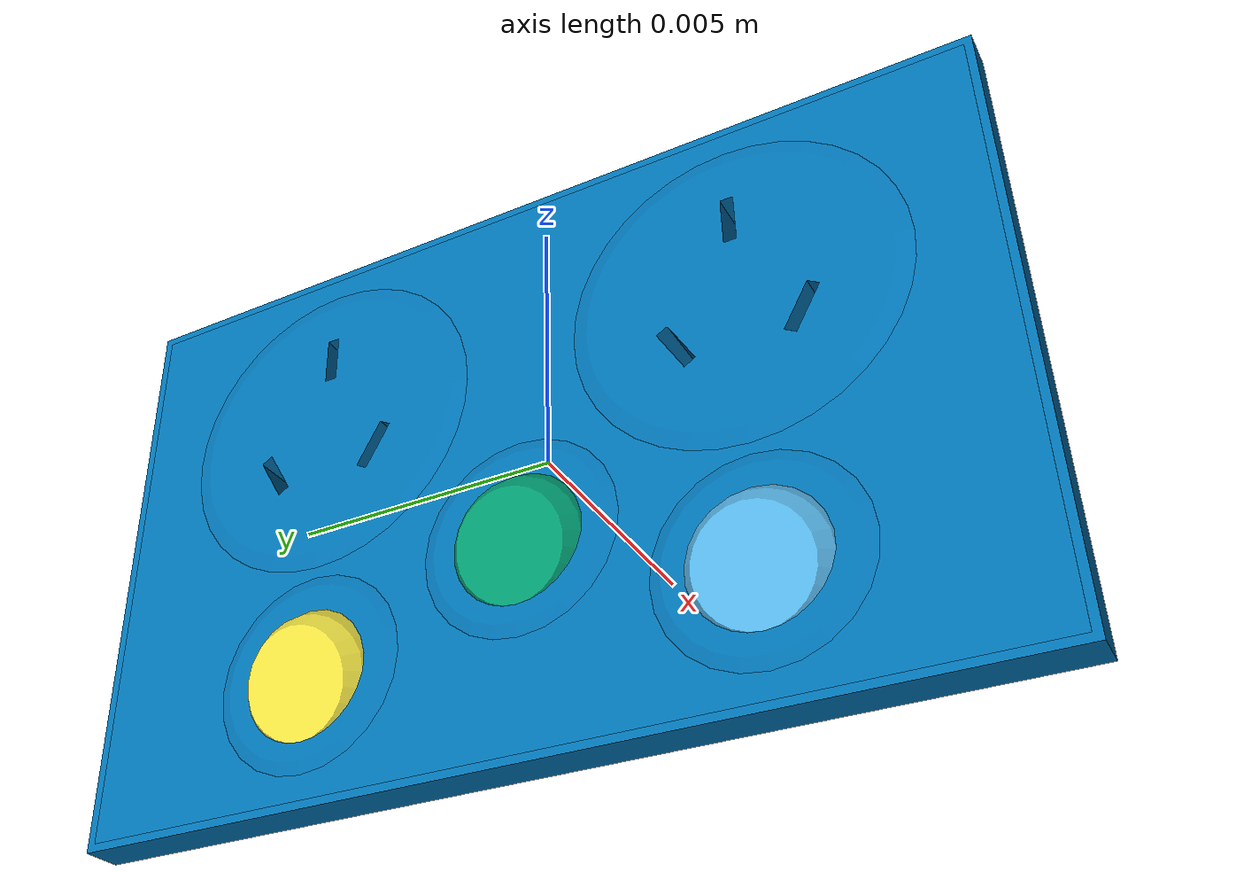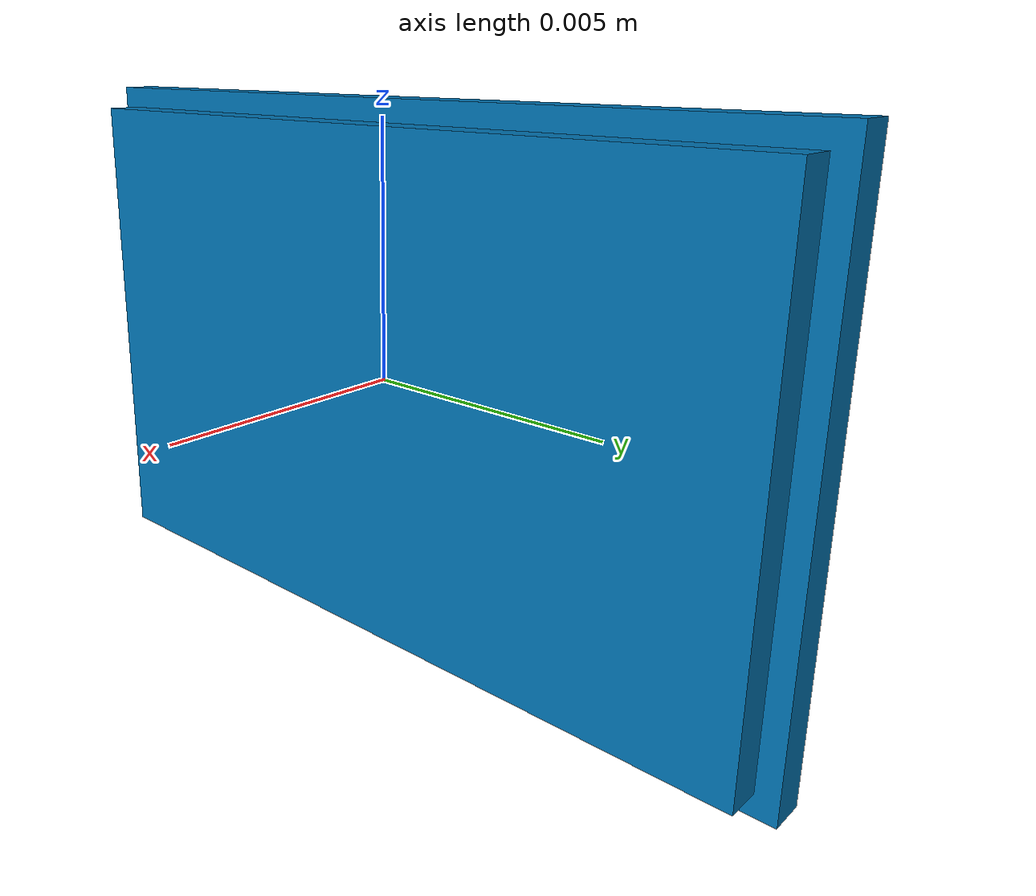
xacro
<robot name="partnet_58383391-eb8a-49d6-a5d0-ff57ca7ef093" xmlns:xacro="http://wiki.ros.org/xacro">
	<xacro:property name="scale" value="100" /><link name="base" />
	<link name="link_0">
		<visual name="switch-1">
			<origin xyz="${0 / scale} ${0.31976550000000004 / scale} ${-0.0734 / scale}" />
			<geometry>
				<mesh filename="package://switch_description/urdf/100902/textured_objs/original-3.obj" scale="${1 / scale} ${1 / scale} ${1 / scale}" />
			</geometry>
		</visual>
		<collision>
			<origin xyz="${0 / scale} ${0.31976550000000004 / scale} ${-0.0734 / scale}" />
			<geometry>
				<mesh filename="package://switch_description/urdf/100902/textured_objs/original-3.obj" scale="${1 / scale} ${1 / scale} ${1 / scale}" />
			</geometry>
		</collision>
	</link>
	<joint name="joint_0" type="revolute">
		<origin xyz="${0 / scale} ${-0.31976550000000004 / scale} ${0.0734 / scale}" />
		<axis xyz="-1 0 0" />
		<child link="link_0" />
		<parent link="link_3" />
		<limit lower="-0.0" upper="0.5235987755982988" effort="10.0" velocity="0.1" />
	</joint>
	<link name="link_1">
		<visual name="switch-2">
			<origin xyz="${0 / scale} ${0.176953 / scale} ${-0.0734 / scale}" />
			<geometry>
				<mesh filename="package://switch_description/urdf/100902/textured_objs/original-15.obj" scale="${1 / scale} ${1 / scale} ${1 / scale}" />
			</geometry>
		</visual>
		<collision>
			<origin xyz="${0 / scale} ${0.176953 / scale} ${-0.0734 / scale}" />
			<geometry>
				<mesh filename="package://switch_description/urdf/100902/textured_objs/original-15.obj" scale="${1 / scale} ${1 / scale} ${1 / scale}" />
			</geometry>
		</collision>
	</link>
	<joint name="joint_1" type="revolute">
		<origin xyz="${0 / scale} ${-0.176953 / scale} ${0.0734 / scale}" />
		<axis xyz="-1 0 0" />
		<child link="link_1" />
		<parent link="link_3" />
		<limit lower="-0.0" upper="0.5235987755982988" effort="10.0" velocity="0.1" />
	</joint>
	<link name="link_2">
		<visual name="switch-3">
			<origin xyz="${0 / scale} ${0.31976550000000004 / scale} ${-0.0734 / scale}" />
			<geometry>
				<mesh filename="package://switch_description/urdf/100902/textured_objs/original-5.obj" scale="${1 / scale} ${1 / scale} ${1 / scale}" />
			</geometry>
		</visual>
		<collision>
			<origin xyz="${0 / scale} ${0.31976550000000004 / scale} ${-0.0734 / scale}" />
			<geometry>
				<mesh filename="package://switch_description/urdf/100902/textured_objs/original-5.obj" scale="${1 / scale} ${1 / scale} ${1 / scale}" />
			</geometry>
		</collision>
	</link>
	<joint name="joint_2" type="revolute">
		<origin xyz="${0 / scale} ${-0.31976550000000004 / scale} ${0.0734 / scale}" />
		<axis xyz="-1 0 0" />
		<child link="link_2" />
		<parent link="link_3" />
		<limit lower="-0.0" upper="0.5235987755982988" effort="10.0" velocity="0.1" />
	</joint>
	<link name="link_3">
		<visual name="base_body-4">
			<origin xyz="${0 / scale} ${0 / scale} ${0 / scale}" />
			<geometry>
				<mesh filename="package://switch_description/urdf/100902/textured_objs/original-4.obj" scale="${1 / scale} ${1 / scale} ${1 / scale}" />
			</geometry>
		</visual>
		<visual name="base_body-4">
			<origin xyz="${0 / scale} ${0 / scale} ${0 / scale}" />
			<geometry>
				<mesh filename="package://switch_description/urdf/100902/textured_objs/original-2.obj" scale="${1 / scale} ${1 / scale} ${1 / scale}" />
			</geometry>
		</visual>
		<visual name="base_body-4">
			<origin xyz="${0 / scale} ${0 / scale} ${0 / scale}" />
			<geometry>
				<mesh filename="package://switch_description/urdf/100902/textured_objs/original-16.obj" scale="${1 / scale} ${1 / scale} ${1 / scale}" />
			</geometry>
		</visual>
		<visual name="base_body-4">
			<origin xyz="${0 / scale} ${0 / scale} ${0 / scale}" />
			<geometry>
				<mesh filename="package://switch_description/urdf/100902/textured_objs/original-8.obj" scale="${1 / scale} ${1 / scale} ${1 / scale}" />
			</geometry>
		</visual>
		<visual name="base_body-4">
			<origin xyz="${0 / scale} ${0 / scale} ${0 / scale}" />
			<geometry>
				<mesh filename="package://switch_description/urdf/100902/textured_objs/original-13.obj" scale="${1 / scale} ${1 / scale} ${1 / scale}" />
			</geometry>
		</visual>
		<visual name="base_body-4">
			<origin xyz="${0 / scale} ${0 / scale} ${0 / scale}" />
			<geometry>
				<mesh filename="package://switch_description/urdf/100902/textured_objs/original-9.obj" scale="${1 / scale} ${1 / scale} ${1 / scale}" />
			</geometry>
		</visual>
		<visual name="base_body-4">
			<origin xyz="${0 / scale} ${0 / scale} ${0 / scale}" />
			<geometry>
				<mesh filename="package://switch_description/urdf/100902/textured_objs/original-6.obj" scale="${1 / scale} ${1 / scale} ${1 / scale}" />
			</geometry>
		</visual>
		<visual name="base_body-4">
			<origin xyz="${0 / scale} ${0 / scale} ${0 / scale}" />
			<geometry>
				<mesh filename="package://switch_description/urdf/100902/textured_objs/original-11.obj" scale="${1 / scale} ${1 / scale} ${1 / scale}" />
			</geometry>
		</visual>
		<visual name="base_body-4">
			<origin xyz="${0 / scale} ${0 / scale} ${0 / scale}" />
			<geometry>
				<mesh filename="package://switch_description/urdf/100902/textured_objs/original-17.obj" scale="${1 / scale} ${1 / scale} ${1 / scale}" />
			</geometry>
		</visual>
		<visual name="base_body-4">
			<origin xyz="${0 / scale} ${0 / scale} ${0 / scale}" />
			<geometry>
				<mesh filename="package://switch_description/urdf/100902/textured_objs/original-12.obj" scale="${1 / scale} ${1 / scale} ${1 / scale}" />
			</geometry>
		</visual>
		<visual name="base_body-4">
			<origin xyz="${0 / scale} ${0 / scale} ${0 / scale}" />
			<geometry>
				<mesh filename="package://switch_description/urdf/100902/textured_objs/original-7.obj" scale="${1 / scale} ${1 / scale} ${1 / scale}" />
			</geometry>
		</visual>
		<visual name="base_body-4">
			<origin xyz="${0 / scale} ${0 / scale} ${0 / scale}" />
			<geometry>
				<mesh filename="package://switch_description/urdf/100902/textured_objs/original-1.obj" scale="${1 / scale} ${1 / scale} ${1 / scale}" />
			</geometry>
		</visual>
		<visual name="base_body-4">
			<origin xyz="${0 / scale} ${0 / scale} ${0 / scale}" />
			<geometry>
				<mesh filename="package://switch_description/urdf/100902/textured_objs/original-10.obj" scale="${1 / scale} ${1 / scale} ${1 / scale}" />
			</geometry>
		</visual>
		<visual name="base_body-4">
			<origin xyz="${0 / scale} ${0 / scale} ${0 / scale}" />
			<geometry>
				<mesh filename="package://switch_description/urdf/100902/textured_objs/original-14.obj" scale="${1 / scale} ${1 / scale} ${1 / scale}" />
			</geometry>
		</visual>
		<collision>
			<origin xyz="${0 / scale} ${0 / scale} ${0 / scale}" />
			<geometry>
				<mesh filename="package://switch_description/urdf/100902/textured_objs/original-4.obj" scale="${1 / scale} ${1 / scale} ${1 / scale}" />
			</geometry>
		</collision>
		<collision>
			<origin xyz="${0 / scale} ${0 / scale} ${0 / scale}" />
			<geometry>
				<mesh filename="package://switch_description/urdf/100902/textured_objs/original-2.obj" scale="${1 / scale} ${1 / scale} ${1 / scale}" />
			</geometry>
		</collision>
		<collision>
			<origin xyz="${0 / scale} ${0 / scale} ${0 / scale}" />
			<geometry>
				<mesh filename="package://switch_description/urdf/100902/textured_objs/original-16.obj" scale="${1 / scale} ${1 / scale} ${1 / scale}" />
			</geometry>
		</collision>
		<collision>
			<origin xyz="${0 / scale} ${0 / scale} ${0 / scale}" />
			<geometry>
				<mesh filename="package://switch_description/urdf/100902/textured_objs/original-8.obj" scale="${1 / scale} ${1 / scale} ${1 / scale}" />
			</geometry>
		</collision>
		<collision>
			<origin xyz="${0 / scale} ${0 / scale} ${0 / scale}" />
			<geometry>
				<mesh filename="package://switch_description/urdf/100902/textured_objs/original-13.obj" scale="${1 / scale} ${1 / scale} ${1 / scale}" />
			</geometry>
		</collision>
		<collision>
			<origin xyz="${0 / scale} ${0 / scale} ${0 / scale}" />
			<geometry>
				<mesh filename="package://switch_description/urdf/100902/textured_objs/original-9.obj" scale="${1 / scale} ${1 / scale} ${1 / scale}" />
			</geometry>
		</collision>
		<collision>
			<origin xyz="${0 / scale} ${0 / scale} ${0 / scale}" />
			<geometry>
				<mesh filename="package://switch_description/urdf/100902/textured_objs/original-6.obj" scale="${1 / scale} ${1 / scale} ${1 / scale}" />
			</geometry>
		</collision>
		<collision>
			<origin xyz="${0 / scale} ${0 / scale} ${0 / scale}" />
			<geometry>
				<mesh filename="package://switch_description/urdf/100902/textured_objs/original-11.obj" scale="${1 / scale} ${1 / scale} ${1 / scale}" />
			</geometry>
		</collision>
		<collision>
			<origin xyz="${0 / scale} ${0 / scale} ${0 / scale}" />
			<geometry>
				<mesh filename="package://switch_description/urdf/100902/textured_objs/original-17.obj" scale="${1 / scale} ${1 / scale} ${1 / scale}" />
			</geometry>
		</collision>
		<collision>
			<origin xyz="${0 / scale} ${0 / scale} ${0 / scale}" />
			<geometry>
				<mesh filename="package://switch_description/urdf/100902/textured_objs/original-12.obj" scale="${1 / scale} ${1 / scale} ${1 / scale}" />
			</geometry>
		</collision>
		<collision>
			<origin xyz="${0 / scale} ${0 / scale} ${0 / scale}" />
			<geometry>
				<mesh filename="package://switch_description/urdf/100902/textured_objs/original-7.obj" scale="${1 / scale} ${1 / scale} ${1 / scale}" />
			</geometry>
		</collision>
		<collision>
			<origin xyz="${0 / scale} ${0 / scale} ${0 / scale}" />
			<geometry>
				<mesh filename="package://switch_description/urdf/100902/textured_objs/original-1.obj" scale="${1 / scale} ${1 / scale} ${1 / scale}" />
			</geometry>
		</collision>
		<collision>
			<origin xyz="${0 / scale} ${0 / scale} ${0 / scale}" />
			<geometry>
				<mesh filename="package://switch_description/urdf/100902/textured_objs/original-10.obj" scale="${1 / scale} ${1 / scale} ${1 / scale}" />
			</geometry>
		</collision>
		<collision>
			<origin xyz="${0 / scale} ${0 / scale} ${0 / scale}" />
			<geometry>
				<mesh filename="package://switch_description/urdf/100902/textured_objs/original-14.obj" scale="${1 / scale} ${1 / scale} ${1 / scale}" />
			</geometry>
		</collision>
	</link>
	<joint name="joint_3" type="fixed">
		<origin rpy="1.570796326794897 0 -1.570796326794897" xyz="${0 / scale} ${0 / scale} ${0 / scale}" />
		<child link="link_3" />
		<parent link="base" />
	</joint>
</robot>
